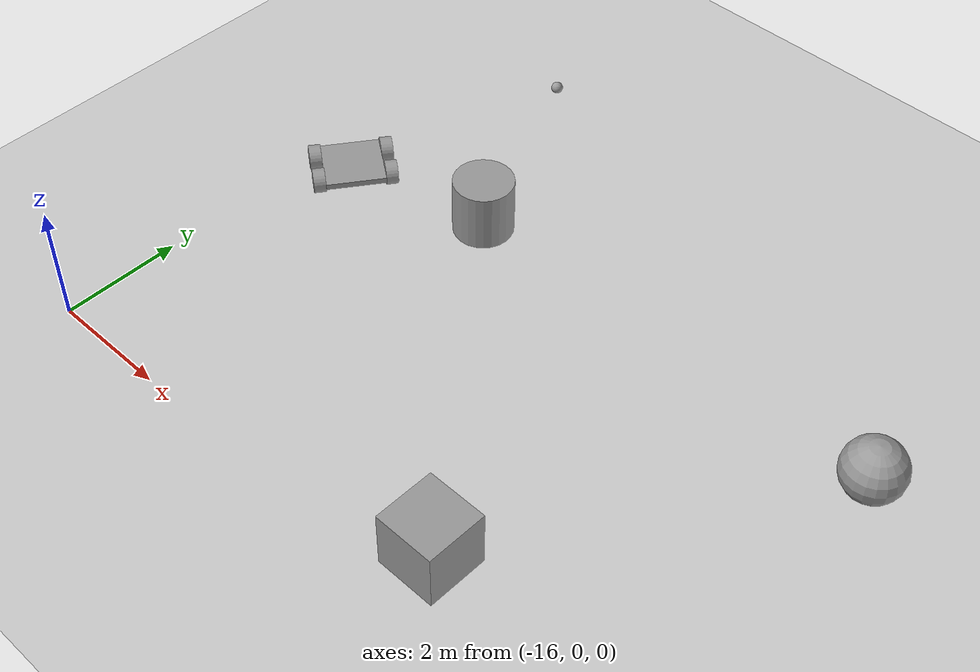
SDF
<sdf version="1.6">
 <world name="default">
  <model name="ground_plane">
   <static>1</static>
   <link name="link">
    <collision name="collision">
     <geometry><plane><normal>0 0 1</normal><size>100 100</size></plane></geometry>
     <surface><friction><ode><mu>100</mu><mu2>50</mu2></ode></friction></surface>
    </collision>
    <visual name="visual">
     <cast_shadows>0</cast_shadows>
     <geometry><plane><normal>0 0 1</normal><size>100 100</size></plane></geometry>
     <material>
      <script><uri>file://media/materials/scripts/gazebo.material</uri><name>Gazebo/Grey</name></script>
     </material>
    </visual>
   </link>
  </model>
  <model name="robot_model_clone">
   <link name="link_0">
    <pose>0.018153 -0.576112 0.2 0 -0 0</pose>
    <inertial>
     <mass>1</mass>
     <inertia>
      <ixx>0.166667</ixx>
      <ixy>0</ixy>
      <ixz>0</ixz>
      <iyy>0.166667</iyy>
      <iyz>0</iyz>
      <izz>0.166667</izz>
     </inertia>
    </inertial>
    <visual name="visual">
     <geometry><box><size>1 1 0.1</size></box></geometry>
     <material>
      <lighting>1</lighting>
      <script><uri>file://media/materials/scripts/gazebo.material</uri><name>Gazebo/Grey</name></script>
      <shader type="pixel"><normal_map>__default__</normal_map></shader>
      <ambient>0.3 0.3 0.3 1</ambient>
      <diffuse>0.7 0.7 0.7 1</diffuse>
      <specular>0.01 0.01 0.01 1</specular>
      <emissive>0 0 0 1</emissive>
     </material>
    </visual>
    <collision name="collision">
     <geometry><box><size>1 1 0.1</size></box></geometry>
     <surface>
      <friction>
       <ode><mu>1</mu><mu2>1</mu2><fdir1>0 0 0</fdir1><slip1>0</slip1><slip2>0</slip2></ode>
       <torsional>
        <coefficient>1</coefficient>
        <patch_radius>0</patch_radius>
        <surface_radius>0</surface_radius>
        <use_patch_radius>1</use_patch_radius>
        <ode><slip>0</slip></ode>
       </torsional>
      </friction>
      <bounce><restitution_coefficient>0</restitution_coefficient><threshold>1e+06</threshold></bounce>
      <contact>
       <collide_without_contact>0</collide_without_contact>
       <collide_without_contact_bitmask>1</collide_without_contact_bitmask>
       <collide_bitmask>1</collide_bitmask>
       <ode>
        <soft_cfm>0</soft_cfm>
        <soft_erp>0.2</soft_erp>
        <kp>1e+13</kp>
        <kd>1</kd>
        <max_vel>0.01</max_vel>
        <min_depth>0</min_depth>
       </ode>
       <bullet>
        <split_impulse>1</split_impulse>
        <split_impulse_penetration_threshold>-0.01</split_impulse_penetration_threshold>
        <soft_cfm>0</soft_cfm>
        <soft_erp>0.2</soft_erp>
        <kp>1e+13</kp>
        <kd>1</kd>
       </bullet>
      </contact>
     </surface>
    </collision>
   </link>
   <link name="link_1">
    <pose>0.318153 -1.17613 0.2 1.5707 -0 0</pose>
    <inertial>
     <mass>1</mass>
     <inertia><ixx>0.145833</ixx><ixy>0</ixy><ixz>0</ixz><iyy>0.145833</iyy><iyz>0</iyz><izz>0.125</izz></inertia>
    </inertial>
    <visual name="visual">
     <geometry><cylinder><radius>0.2</radius><length>0.2</length></cylinder></geometry>
     <material>
      <lighting>1</lighting>
      <script><uri>file://media/materials/scripts/gazebo.material</uri><name>Gazebo/Grey</name></script>
      <shader type="pixel"><normal_map>__default__</normal_map></shader>
      <ambient>0.3 0.3 0.3 1</ambient>
      <diffuse>0.7 0.7 0.7 1</diffuse>
      <specular>0.01 0.01 0.01 1</specular>
      <emissive>0 0 0 1</emissive>
     </material>
    </visual>
    <collision name="collision">
     <geometry><cylinder><radius>0.2</radius><length>0.2</length></cylinder></geometry>
     <surface>
      <friction>
       <ode><mu>1</mu><mu2>1</mu2><fdir1>0 0 0</fdir1><slip1>0</slip1><slip2>0</slip2></ode>
       <torsional>
        <coefficient>1</coefficient>
        <patch_radius>0</patch_radius>
        <surface_radius>0</surface_radius>
        <use_patch_radius>1</use_patch_radius>
        <ode><slip>0</slip></ode>
       </torsional>
      </friction>
      <bounce><restitution_coefficient>0</restitution_coefficient><threshold>1e+06</threshold></bounce>
      <contact>
       <collide_without_contact>0</collide_without_contact>
       <collide_without_contact_bitmask>1</collide_without_contact_bitmask>
       <collide_bitmask>1</collide_bitmask>
       <ode>
        <soft_cfm>0</soft_cfm>
        <soft_erp>0.2</soft_erp>
        <kp>1e+13</kp>
        <kd>1</kd>
        <max_vel>0.01</max_vel>
        <min_depth>0</min_depth>
       </ode>
       <bullet>
        <split_impulse>1</split_impulse>
        <split_impulse_penetration_threshold>-0.01</split_impulse_penetration_threshold>
        <soft_cfm>0</soft_cfm>
        <soft_erp>0.2</soft_erp>
        <kp>1e+13</kp>
        <kd>1</kd>
       </bullet>
      </contact>
     </surface>
    </collision>
   </link>
   <link name="link_1_clone">
    <pose>-0.281847 -1.17613 0.2 1.5707 -0 0</pose>
    <inertial>
     <mass>1</mass>
     <inertia><ixx>0.145833</ixx><ixy>0</ixy><ixz>0</ixz><iyy>0.145833</iyy><iyz>0</iyz><izz>0.125</izz></inertia>
    </inertial>
    <visual name="visual">
     <geometry><cylinder><radius>0.2</radius><length>0.2</length></cylinder></geometry>
     <material>
      <lighting>1</lighting>
      <script><uri>file://media/materials/scripts/gazebo.material</uri><name>Gazebo/Grey</name></script>
      <shader type="pixel"><normal_map>__default__</normal_map></shader>
      <ambient>0.3 0.3 0.3 1</ambient>
      <diffuse>0.7 0.7 0.7 1</diffuse>
      <specular>0.01 0.01 0.01 1</specular>
      <emissive>0 0 0 1</emissive>
     </material>
    </visual>
    <collision name="collision">
     <geometry><cylinder><radius>0.2</radius><length>0.2</length></cylinder></geometry>
     <surface>
      <friction>
       <ode><mu>1</mu><mu2>1</mu2><fdir1>0 0 0</fdir1><slip1>0</slip1><slip2>0</slip2></ode>
       <torsional>
        <coefficient>1</coefficient>
        <patch_radius>0</patch_radius>
        <surface_radius>0</surface_radius>
        <use_patch_radius>1</use_patch_radius>
        <ode><slip>0</slip></ode>
       </torsional>
      </friction>
      <bounce><restitution_coefficient>0</restitution_coefficient><threshold>1e+06</threshold></bounce>
      <contact>
       <collide_without_contact>0</collide_without_contact>
       <collide_without_contact_bitmask>1</collide_without_contact_bitmask>
       <collide_bitmask>1</collide_bitmask>
       <ode>
        <soft_cfm>0</soft_cfm>
        <soft_erp>0.2</soft_erp>
        <kp>1e+13</kp>
        <kd>1</kd>
        <max_vel>0.01</max_vel>
        <min_depth>0</min_depth>
       </ode>
       <bullet>
        <split_impulse>1</split_impulse>
        <split_impulse_penetration_threshold>-0.01</split_impulse_penetration_threshold>
        <soft_cfm>0</soft_cfm>
        <soft_erp>0.2</soft_erp>
        <kp>1e+13</kp>
        <kd>1</kd>
       </bullet>
      </contact>
     </surface>
    </collision>
   </link>
   <link name="link_1_clone_clone">
    <pose>-0.281847 0.023907 0.2 1.5707 -0 0</pose>
    <inertial>
     <mass>1</mass>
     <inertia><ixx>0.145833</ixx><ixy>0</ixy><ixz>0</ixz><iyy>0.145833</iyy><iyz>0</iyz><izz>0.125</izz></inertia>
    </inertial>
    <visual name="visual">
     <geometry><cylinder><radius>0.2</radius><length>0.2</length></cylinder></geometry>
     <material>
      <lighting>1</lighting>
      <script><uri>file://media/materials/scripts/gazebo.material</uri><name>Gazebo/Grey</name></script>
      <shader type="pixel"><normal_map>__default__</normal_map></shader>
      <ambient>0.3 0.3 0.3 1</ambient>
      <diffuse>0.7 0.7 0.7 1</diffuse>
      <specular>0.01 0.01 0.01 1</specular>
      <emissive>0 0 0 1</emissive>
     </material>
    </visual>
    <collision name="collision">
     <geometry><cylinder><radius>0.2</radius><length>0.2</length></cylinder></geometry>
     <surface>
      <friction>
       <ode><mu>1</mu><mu2>1</mu2><fdir1>0 0 0</fdir1><slip1>0</slip1><slip2>0</slip2></ode>
       <torsional>
        <coefficient>1</coefficient>
        <patch_radius>0</patch_radius>
        <surface_radius>0</surface_radius>
        <use_patch_radius>1</use_patch_radius>
        <ode><slip>0</slip></ode>
       </torsional>
      </friction>
      <bounce><restitution_coefficient>0</restitution_coefficient><threshold>1e+06</threshold></bounce>
      <contact>
       <collide_without_contact>0</collide_without_contact>
       <collide_without_contact_bitmask>1</collide_without_contact_bitmask>
       <collide_bitmask>1</collide_bitmask>
       <ode>
        <soft_cfm>0</soft_cfm>
        <soft_erp>0.2</soft_erp>
        <kp>1e+13</kp>
        <kd>1</kd>
        <max_vel>0.01</max_vel>
        <min_depth>0</min_depth>
       </ode>
       <bullet>
        <split_impulse>1</split_impulse>
        <split_impulse_penetration_threshold>-0.01</split_impulse_penetration_threshold>
        <soft_cfm>0</soft_cfm>
        <soft_erp>0.2</soft_erp>
        <kp>1e+13</kp>
        <kd>1</kd>
       </bullet>
      </contact>
     </surface>
    </collision>
   </link>
   <link name="link_1_clone_clone_0">
    <pose>0.318153 0.023907 0.2 1.5707 -0 0</pose>
    <inertial>
     <mass>1</mass>
     <inertia><ixx>0.145833</ixx><ixy>0</ixy><ixz>0</ixz><iyy>0.145833</iyy><iyz>0</iyz><izz>0.125</izz></inertia>
    </inertial>
    <visual name="visual">
     <geometry><cylinder><radius>0.2</radius><length>0.2</length></cylinder></geometry>
     <material>
      <lighting>1</lighting>
      <script><uri>file://media/materials/scripts/gazebo.material</uri><name>Gazebo/Grey</name></script>
      <shader type="pixel"><normal_map>__default__</normal_map></shader>
      <ambient>0.3 0.3 0.3 1</ambient>
      <diffuse>0.7 0.7 0.7 1</diffuse>
      <specular>0.01 0.01 0.01 1</specular>
      <emissive>0 0 0 1</emissive>
     </material>
    </visual>
    <collision name="collision">
     <geometry><cylinder><radius>0.2</radius><length>0.2</length></cylinder></geometry>
     <surface>
      <friction>
       <ode><mu>1</mu><mu2>1</mu2><fdir1>0 0 0</fdir1><slip1>0</slip1><slip2>0</slip2></ode>
       <torsional>
        <coefficient>1</coefficient>
        <patch_radius>0</patch_radius>
        <surface_radius>0</surface_radius>
        <use_patch_radius>1</use_patch_radius>
        <ode><slip>0</slip></ode>
       </torsional>
      </friction>
      <bounce><restitution_coefficient>0</restitution_coefficient><threshold>1e+06</threshold></bounce>
      <contact>
       <collide_without_contact>0</collide_without_contact>
       <collide_without_contact_bitmask>1</collide_without_contact_bitmask>
       <collide_bitmask>1</collide_bitmask>
       <ode>
        <soft_cfm>0</soft_cfm>
        <soft_erp>0.2</soft_erp>
        <kp>1e+13</kp>
        <kd>1</kd>
        <max_vel>0.01</max_vel>
        <min_depth>0</min_depth>
       </ode>
       <bullet>
        <split_impulse>1</split_impulse>
        <split_impulse_penetration_threshold>-0.01</split_impulse_penetration_threshold>
        <soft_cfm>0</soft_cfm>
        <soft_erp>0.2</soft_erp>
        <kp>1e+13</kp>
        <kd>1</kd>
       </bullet>
      </contact>
     </surface>
    </collision>
   </link>
   <joint name="link_0_JOINT_0" type="revolute">
    <parent>link_0</parent>
    <child>link_1_clone</child>
    <axis>
     <xyz>0 0 1</xyz>
     <use_parent_model_frame>0</use_parent_model_frame>
     <limit>
      <lower>-1.79769e+308</lower>
      <upper>1.79769e+308</upper>
      <effort>-1</effort>
      <velocity>-1</velocity>
     </limit>
     <dynamics>
      <spring_reference>0</spring_reference>
      <spring_stiffness>0</spring_stiffness>
      <damping>0</damping>
     </dynamics>
    </axis>
    <physics>
     <ode><limit><cfm>0</cfm><erp>0.2</erp></limit><suspension><cfm>0</cfm><erp>0.2</erp></suspension></ode>
    </physics>
   </joint>
   <joint name="link_0_JOINT_1" type="revolute">
    <parent>link_0</parent>
    <child>link_1</child>
    <axis>
     <xyz>0 0 1</xyz>
     <use_parent_model_frame>0</use_parent_model_frame>
     <limit>
      <lower>-1.79769e+308</lower>
      <upper>1.79769e+308</upper>
      <effort>-1</effort>
      <velocity>-1</velocity>
     </limit>
     <dynamics>
      <spring_reference>0</spring_reference>
      <spring_stiffness>0</spring_stiffness>
      <damping>0</damping>
     </dynamics>
    </axis>
    <physics>
     <ode><limit><cfm>0</cfm><erp>0.2</erp></limit><suspension><cfm>0</cfm><erp>0.2</erp></suspension></ode>
    </physics>
   </joint>
   <joint name="link_0_JOINT_2" type="revolute">
    <parent>link_0</parent>
    <child>link_1_clone_clone</child>
    <axis>
     <xyz>0 0 1</xyz>
     <use_parent_model_frame>0</use_parent_model_frame>
     <limit>
      <lower>-1.79769e+308</lower>
      <upper>1.79769e+308</upper>
      <effort>-1</effort>
      <velocity>-1</velocity>
     </limit>
     <dynamics>
      <spring_reference>0</spring_reference>
      <spring_stiffness>0</spring_stiffness>
      <damping>0</damping>
     </dynamics>
    </axis>
    <physics>
     <ode><limit><cfm>0</cfm><erp>0.2</erp></limit><suspension><cfm>0</cfm><erp>0.2</erp></suspension></ode>
    </physics>
   </joint>
   <joint name="link_0_JOINT_3" type="revolute">
    <parent>link_0</parent>
    <child>link_1_clone_clone_0</child>
    <axis>
     <xyz>0 0 1</xyz>
     <use_parent_model_frame>0</use_parent_model_frame>
     <limit>
      <lower>-1.79769e+308</lower>
      <upper>1.79769e+308</upper>
      <effort>-1</effort>
      <velocity>-1</velocity>
     </limit>
     <dynamics>
      <spring_reference>0</spring_reference>
      <spring_stiffness>0</spring_stiffness>
      <damping>0</damping>
     </dynamics>
    </axis>
    <physics>
     <ode><limit><cfm>0</cfm><erp>0.2</erp></limit><suspension><cfm>0</cfm><erp>0.2</erp></suspension></ode>
    </physics>
   </joint>
   <static>0</static>
   <pose>-15.5859 4.75535 0.400007 -3.14159 -8e-06 -0.618034</pose>
  </model>
  <model name="unit_cylinder">
   <pose>-12.7803 5.80228 0.499993 -3e-06 1e-06 0</pose>
   <link name="link">
    <inertial>
     <mass>1</mass>
     <inertia><ixx>0.145833</ixx><ixy>0</ixy><ixz>0</ixz><iyy>0.145833</iyy><iyz>0</iyz><izz>0.125</izz></inertia>
    </inertial>
    <collision name="collision">
     <geometry><cylinder><radius>0.5</radius><length>1</length></cylinder></geometry>
    </collision>
    <visual name="visual">
     <geometry><cylinder><radius>0.5</radius><length>1</length></cylinder></geometry>
     <material>
      <script><name>Gazebo/Grey</name><uri>file://media/materials/scripts/gazebo.material</uri></script>
     </material>
    </visual>
   </link>
  </model>
  <model name="unit_box">
   <pose>-8.75915 0.670145 0.499995 -6e-06 3e-06 0</pose>
   <link name="link">
    <inertial>
     <mass>1</mass>
     <inertia>
      <ixx>0.166667</ixx>
      <ixy>0</ixy>
      <ixz>0</ixz>
      <iyy>0.166667</iyy>
      <iyz>0</iyz>
      <izz>0.166667</izz>
     </inertia>
    </inertial>
    <collision name="collision"><geometry><box><size>1 1 1</size></box></geometry></collision>
    <visual name="visual">
     <geometry><box><size>1 1 1</size></box></geometry>
     <material>
      <script><name>Gazebo/Grey</name><uri>file://media/materials/scripts/gazebo.material</uri></script>
     </material>
    </visual>
   </link>
  </model>
  <model name="unit_sphere">
   <pose>-5.26408 5.70012 0.49999 0 -0 0</pose>
   <link name="link">
    <inertial>
     <mass>1</mass>
     <inertia><ixx>0.1</ixx><ixy>0</ixy><ixz>0</ixz><iyy>0.1</iyy><iyz>0</iyz><izz>0.1</izz></inertia>
    </inertial>
    <collision name="collision"><geometry><sphere><radius>0.5</radius></sphere></geometry></collision>
    <visual name="visual">
     <geometry><sphere><radius>0.5</radius></sphere></geometry>
     <material>
      <script><name>Gazebo/Grey</name><uri>file://media/materials/scripts/gazebo.material</uri></script>
     </material>
    </visual>
   </link>
  </model>
  <model name="my_ball">
   <link name="link_0">
    <inertial>
     <mass>1</mass>
     <inertia><ixx>0.1</ixx><ixy>0</ixy><ixz>0</ixz><iyy>0.1</iyy><iyz>0</iyz><izz>0.1</izz></inertia>
    </inertial>
    <visual name="visual">
     <geometry><sphere><radius>0.1</radius></sphere></geometry>
     <material>
      <lighting>1</lighting>
      <script><uri>file://media/materials/scripts/gazebo.material</uri><name>Gazebo/Grey</name></script>
      <shader type="pixel"><normal_map>__default__</normal_map></shader>
      <ambient>1 1 1 1</ambient>
      <diffuse>1 1 1 1</diffuse>
      <specular>1 1 1 1</specular>
      <emissive>1 1 1 1</emissive>
     </material>
    </visual>
    <collision name="collision">
     <geometry><sphere><radius>0.1</radius></sphere></geometry>
     <surface>
      <friction>
       <ode><mu>1</mu><mu2>1</mu2><fdir1>0 0 0</fdir1><slip1>0</slip1><slip2>0</slip2></ode>
       <torsional>
        <coefficient>1</coefficient>
        <patch_radius>0</patch_radius>
        <surface_radius>0</surface_radius>
        <use_patch_radius>1</use_patch_radius>
        <ode><slip>0</slip></ode>
       </torsional>
      </friction>
      <bounce><restitution_coefficient>0</restitution_coefficient><threshold>1e+06</threshold></bounce>
      <contact>
       <collide_without_contact>0</collide_without_contact>
       <collide_without_contact_bitmask>1</collide_without_contact_bitmask>
       <collide_bitmask>1</collide_bitmask>
       <ode>
        <soft_cfm>0</soft_cfm>
        <soft_erp>0.2</soft_erp>
        <kp>1e+13</kp>
        <kd>1</kd>
        <max_vel>0.01</max_vel>
        <min_depth>0</min_depth>
       </ode>
       <bullet>
        <split_impulse>1</split_impulse>
        <split_impulse_penetration_threshold>-0.01</split_impulse_penetration_threshold>
        <soft_cfm>0</soft_cfm>
        <soft_erp>0.2</soft_erp>
        <kp>1e+13</kp>
        <kd>1</kd>
       </bullet>
      </contact>
     </surface>
    </collision>
   </link>
   <static>0</static>
   <pose>-14.2612 9.19736 0.1 0 -0 0</pose>
  </model>
 </world>
</sdf>
